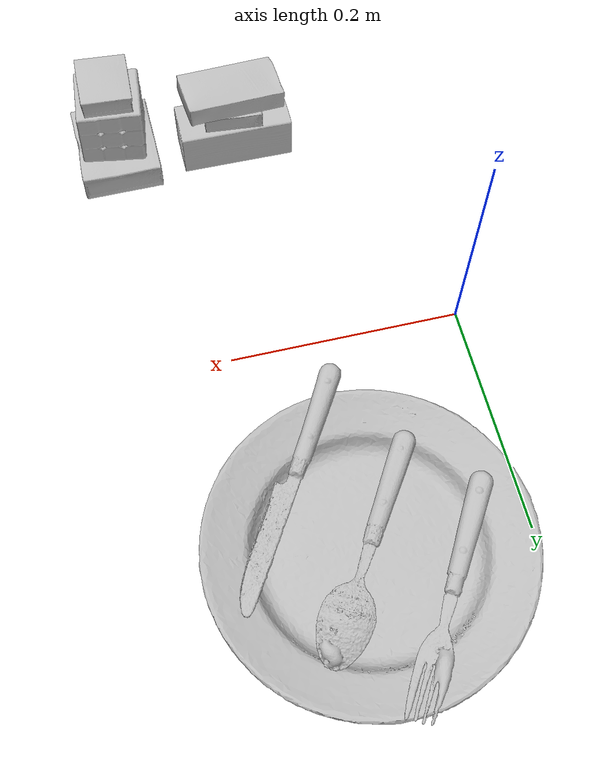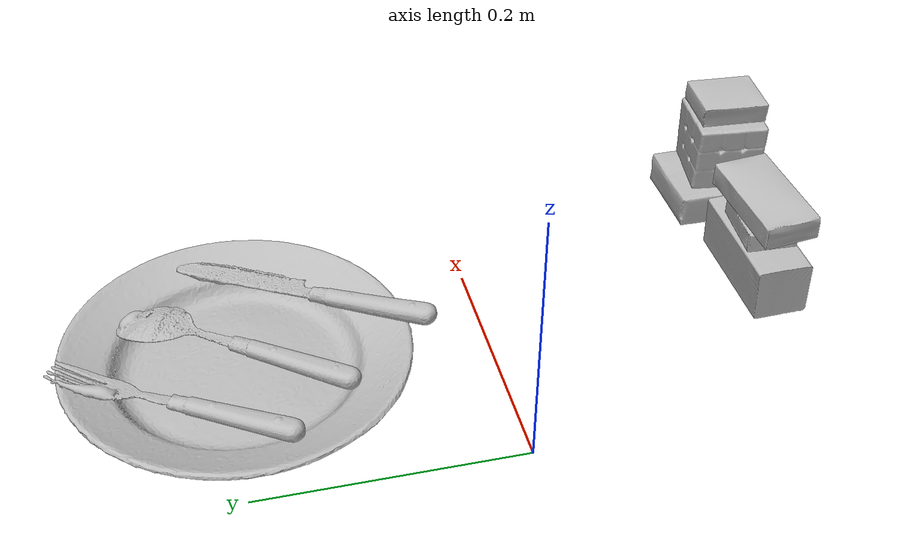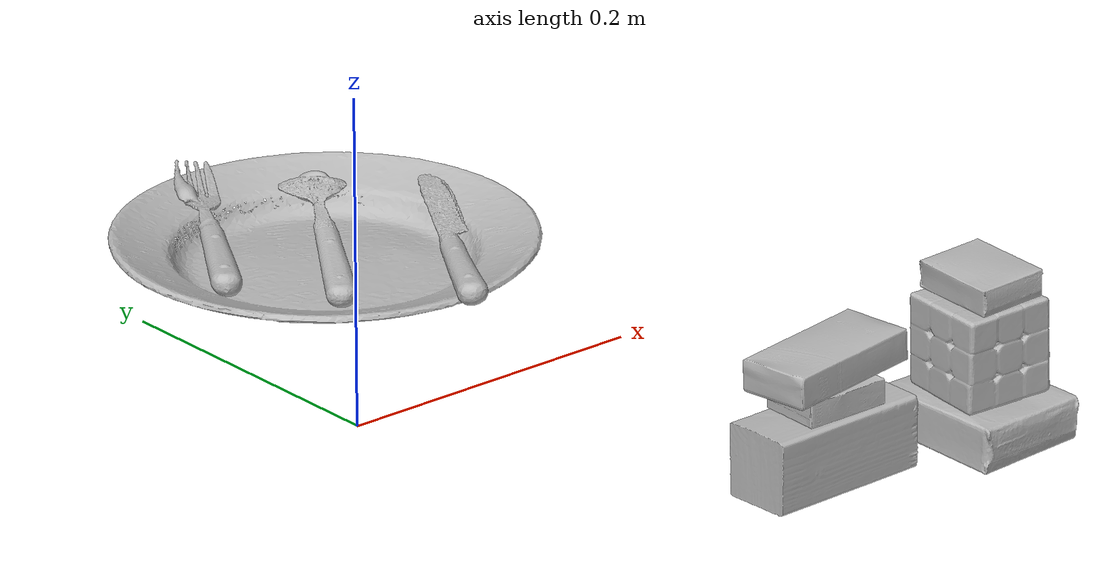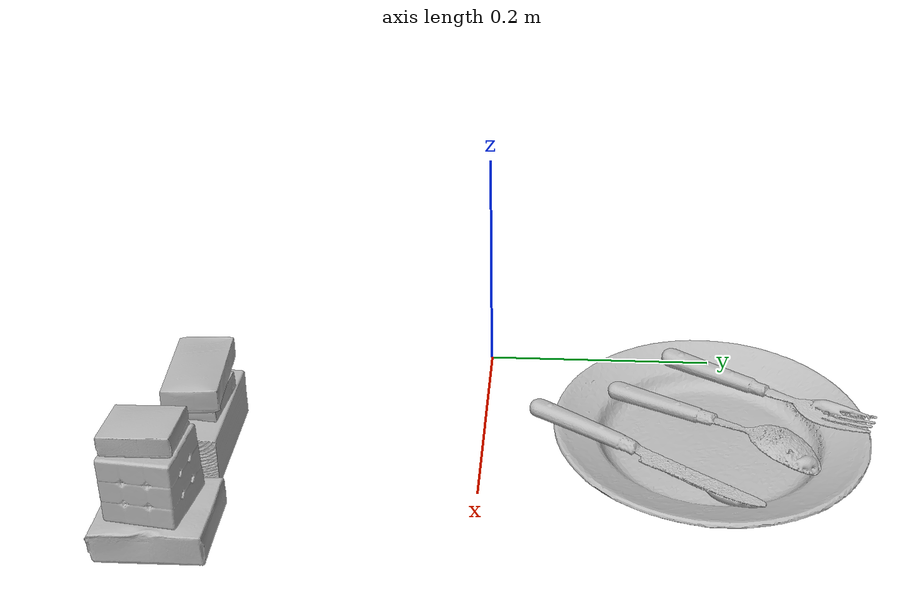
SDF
<?xml version="1.0" ?>
<sdf version="1.4">
  <world name="default">
    <light name="light1" type="point">
      <pose>0 0 1 0 0 0</pose>
      <diffuse>3 3 3 1</diffuse>
      <specular>3 3 3 1</specular>
    </light>
    <light name="light2" type="point">
      <pose>0 0.5 2 0 0 0</pose>
      <diffuse>1 1 1 1</diffuse>
      <specular>1 1 1 1</specular>
    </light>
    <light name="light3" type="point">
      <pose>0 0.5 2 0 0 0</pose>
      <diffuse>3 3 3 1</diffuse>
      <specular>3 3 3 1</specular>
    </light>
    <scene>
      <ambient>0.7 0.7 0.7</ambient>
    </scene>
    <model name="box11">
      <link name="link_box11">
        <collision name="default">
          <geometry>
            <mesh>
              <uri>model://gelatin_box/collision_meshes/collision.obj</uri>
              <scale>1.0 1.0 1.0</scale>
            </mesh>
          </geometry>
          <surface>
            <friction>
              <ode>
                <mu>0.5</mu>
                <mu2>0.5</mu2>
              </ode>
            </friction>
          </surface>
        </collision>
        <visual name="default">
          <geometry>
            <mesh>
              <uri>model://gelatin_box/visual_meshes/visual.dae</uri>
              <scale>1.0 1.0 1.0</scale>
            </mesh>
          </geometry>
        </visual>
        <inertial>
          <mass>0.25029057264328003</mass>
          <pose>0.0004319618456065655 0.00011156871914863586 -0.0003640321083366871 -0.0010503719874808634 -0.004755820553863559 0.01644055760983946</pose>
          <inertia>
            <ixx>0.00017668474</ixx>
            <iyy>0.000126205</iyy>
            <izz>0.00026895347</izz>
            <ixy>0</ixy>
            <ixz>0</ixz>
            <iyz>0</iyz>
          </inertia>
        </inertial>
      </link>
      <pose>0.25998008251190186 -0.23993290960788727 0.015168305486440659 0.005593690212416526 -0.007301746060565749 -0.00019321790138053245</pose>
    </model>
    <model name="box12">
      <link name="link_box12">
        <collision name="default">
          <geometry>
            <mesh>
              <uri>model://rubiks_cube/collision_meshes/collision.obj</uri>
              <scale>1.0 1.0 1.0</scale>
            </mesh>
          </geometry>
          <surface>
            <friction>
              <ode>
                <mu>0.5</mu>
                <mu2>0.5</mu2>
              </ode>
            </friction>
          </surface>
        </collision>
        <visual name="default">
          <geometry>
            <mesh>
              <uri>model://rubiks_cube/visual_meshes/visual.dae</uri>
              <scale>1.0 1.0 1.0</scale>
            </mesh>
          </geometry>
        </visual>
        <inertial>
          <mass>0.21638615429401398</mass>
          <pose>2.6721043468569405e-05 5.2569666877388954e-05 -7.264316536748083e-06 -0.054671974778446215 -0.0981397652693683 -0.03445575269454635</pose>
          <inertia>
            <ixx>0.00011956789</ixx>
            <iyy>0.00011901029</iyy>
            <izz>0.00012055871</izz>
            <ixy>0</ixy>
            <ixz>0</ixz>
            <iyz>0</iyz>
          </inertia>
        </inertial>
      </link>
      <pose>0.2588077485561371 -0.23992247879505157 0.05841498821973801 -0.007110449831550501 -0.03379948101112483 -0.09120349188357176</pose>
    </model>
    <model name="box13">
      <link name="link_box13">
        <collision name="default">
          <geometry>
            <mesh>
              <uri>model://pudding_box/collision_meshes/collision.obj</uri>
              <scale>0.5 0.5 0.5</scale>
            </mesh>
          </geometry>
          <surface>
            <friction>
              <ode>
                <mu>0.5</mu>
                <mu2>0.5</mu2>
              </ode>
            </friction>
          </surface>
        </collision>
        <visual name="default">
          <geometry>
            <mesh>
              <uri>model://pudding_box/visual_meshes/visual.dae</uri>
              <scale>0.5 0.5 0.5</scale>
            </mesh>
          </geometry>
        </visual>
        <inertial>
          <mass>0.024692855775356293</mass>
          <pose>0.00024474109522998333 0.00040339428232982755 -0.0002594413817860186 0.005213102294063647 -0.006603794537377036 0.020079827031592012</pose>
          <inertia>
            <ixx>6.9785e-06</ixx>
            <iyy>4.695185e-06</iyy>
            <izz>1.030558e-05</izz>
            <ixy>0</ixy>
            <ixz>0</ixz>
            <iyz>0</iyz>
          </inertia>
        </inertial>
      </link>
      <pose>0.25858673453330994 -0.2397509515285492 0.09727060049772263 0.01612426326979103 -0.02910659807260202 -0.028321477887295034</pose>
    </model>
    <model name="box21">
      <link name="link_box21">
        <collision name="default">
          <geometry>
            <mesh>
              <uri>model://wood_block/collision_meshes/collision.obj</uri>
              <scale>0.5 0.5 0.5</scale>
            </mesh>
          </geometry>
          <surface>
            <friction>
              <ode>
                <mu>0.5</mu>
                <mu2>0.5</mu2>
              </ode>
            </friction>
          </surface>
        </collision>
        <visual name="default">
          <geometry>
            <mesh>
              <uri>model://wood_block/visual_meshes/visual.dae</uri>
              <scale>0.5 0.5 0.5</scale>
            </mesh>
          </geometry>
        </visual>
        <inertial>
          <mass>0.2621258497238159</mass>
          <pose>-2.9066577553749084e-06 -0.000285404734313488 0.00013204291462898254 -0.05220799390803197 -0.005192696360797016 -0.006861376940793837</pose>
          <inertia>
            <ixx>8.7691005e-05</ixx>
            <iyy>0.00027701593</iyy>
            <izz>0.00027597975</izz>
            <ixy>0</ixy>
            <ixz>0</ixz>
            <iyz>0</iyz>
          </inertia>
        </inertial>
      </link>
      <pose>0.14982928335666656 -0.22917792201042175 0.022527877241373062 -0.01637109699024272 -0.0006035125834942696 0.005394296605035799</pose>
    </model>
    <model name="box22">
      <link name="link_box22">
        <collision name="default">
          <geometry>
            <mesh>
              <uri>model://cracker_box/collision_meshes/collision.obj</uri>
              <scale>0.25 0.25 0.25</scale>
            </mesh>
          </geometry>
          <surface>
            <friction>
              <ode>
                <mu>0.5</mu>
                <mu2>0.5</mu2>
              </ode>
            </friction>
          </surface>
        </collision>
        <visual name="default">
          <geometry>
            <mesh>
              <uri>model://cracker_box/visual_meshes/visual.dae</uri>
              <scale>0.25 0.25 0.25</scale>
            </mesh>
          </geometry>
        </visual>
        <inertial>
          <mass>0.04544714838266373</mass>
          <pose>0.0002366049593547359 6.358561950037256e-05 -0.0004257383698131889 -0.0003162075981767565 -0.011106493326025165 0.0025467940711340945</pose>
          <inertia>
            <ixx>7.224829e-06</ixx>
            <iyy>1.1929612e-05</iyy>
            <izz>1.702465e-05</izz>
            <ixy>0</ixy>
            <ixz>0</ixz>
            <iyz>0</iyz>
          </inertia>
        </inertial>
      </link>
      <pose>0.15004809200763702 -0.22963808476924896 0.05446309968829155 -0.028430055729279976 -0.015018380445899579 -0.06534761555082996</pose>
    </model>
    <model name="box23">
      <link name="link_box23">
        <collision name="default">
          <geometry>
            <mesh>
              <uri>model://sugar_box/collision_meshes/collision.obj</uri>
              <scale>0.5 0.5 0.5</scale>
            </mesh>
          </geometry>
          <surface>
            <friction>
              <ode>
                <mu>0.5</mu>
                <mu2>0.5</mu2>
              </ode>
            </friction>
          </surface>
        </collision>
        <visual name="default">
          <geometry>
            <mesh>
              <uri>model://sugar_box/visual_meshes/visual.dae</uri>
              <scale>0.5 0.5 0.5</scale>
            </mesh>
          </geometry>
        </visual>
        <inertial>
          <mass>0.08974423259496689</mass>
          <pose>0.0005171863595023751 1.924554817378521e-05 -0.00018182402709499002 -0.00040462647498757867 0.0010506636387592515 0.0026153785559760484</pose>
          <inertia>
            <ixx>1.869366e-05</ixx>
            <iyy>6.0421757e-05</iyy>
            <izz>7.233205e-05</izz>
            <ixy>0</ixy>
            <ixz>0</ixz>
            <iyz>0</iyz>
          </inertia>
        </inertial>
      </link>
      <pose>0.1494000107049942 -0.22924430668354034 0.07464625686407089 -0.026910974667135913 -0.048554889552088754 0.08488105439613697</pose>
    </model>
    <model name="plate1">
      <link name="link_plate1">
        <collision name="default">
          <geometry>
            <mesh>
              <uri>model://plate/collision_meshes/collision.obj</uri>
              <scale>1.0 1.0 1.0</scale>
            </mesh>
          </geometry>
          <surface>
            <friction>
              <ode>
                <mu>0.5</mu>
                <mu2>0.5</mu2>
              </ode>
            </friction>
          </surface>
        </collision>
        <visual name="default">
          <geometry>
            <mesh>
              <uri>model://plate/visual_meshes/visual.dae</uri>
              <scale>1.0 1.0 1.0</scale>
            </mesh>
          </geometry>
        </visual>
        <inertial>
          <mass>0.25075921416282654</mass>
          <pose>-0.0006044597248546779 0.00027825814322568476 -0.0010562010575085878 0.0022187872861569474 -0.003225478732834207 0.4526086398584511</pose>
          <inertia>
            <ixx>0.0011730565</ixx>
            <iyy>0.0011618367</iyy>
            <izz>0.0022943232</izz>
            <ixy>0</ixy>
            <ixz>0</ixz>
            <iyz>0</iyz>
          </inertia>
        </inertial>
      </link>
      <pose>0.12999998033046722 0.1900000274181366 0.013733002357184887 5.861510755493233e-08 4.039611185467677e-08 1.2551143779389842e-10</pose>
    </model>
    <model name="silverware1">
      <link name="link_silverware1">
        <collision name="default">
          <geometry>
            <mesh>
              <uri>model://spoon/collision_meshes/collision.obj</uri>
              <scale>1.0 1.0 1.0</scale>
            </mesh>
          </geometry>
          <surface>
            <friction>
              <ode>
                <mu>0.5</mu>
                <mu2>0.5</mu2>
              </ode>
            </friction>
          </surface>
        </collision>
        <visual name="default">
          <geometry>
            <mesh>
              <uri>model://spoon/visual_meshes/visual.dae</uri>
              <scale>1.0 1.0 1.0</scale>
            </mesh>
          </geometry>
        </visual>
        <inertial>
          <mass>0.036317918449640274</mass>
          <pose>-0.005526306107640266 -0.0016034167492762208 -0.0007271648501046002 0.03521625205726148 -0.039065835985121374 0.0061506181118877856</pose>
          <inertia>
            <ixx>2.0200612e-06</ixx>
            <iyy>0.00013818844</iyy>
            <izz>0.00013918467</izz>
            <ixy>0</ixy>
            <ixz>0</ixz>
            <iyz>0</iyz>
          </inertia>
        </inertial>
      </link>
      <pose>0.13164080679416656 0.18951722979545593 0.026727473363280296 3.1101124081600577 -0.07074652448465711 1.0084770784428023</pose>
    </model>
    <model name="silverware2">
      <link name="link_silverware2">
        <collision name="default">
          <geometry>
            <mesh>
              <uri>model://knife/collision_meshes/collision.obj</uri>
              <scale>1.0 1.0 1.0</scale>
            </mesh>
          </geometry>
          <surface>
            <friction>
              <ode>
                <mu>0.5</mu>
                <mu2>0.5</mu2>
              </ode>
            </friction>
          </surface>
        </collision>
        <visual name="default">
          <geometry>
            <mesh>
              <uri>model://knife/visual_meshes/visual.dae</uri>
              <scale>1.0 1.0 1.0</scale>
            </mesh>
          </geometry>
        </visual>
        <inertial>
          <mass>0.03166225552558899</mass>
          <pose>-0.02378525584936142 0.0015275123296305537 5.0620161346159875e-05 0.07305183970819301 0.01724842094470774 -0.007409827313526415</pose>
          <inertia>
            <ixx>8.9870355e-07</ixx>
            <iyy>0.00012164128</iyy>
            <izz>0.00012193073</izz>
            <ixy>0</ixy>
            <ixz>0</ixz>
            <iyz>0</iyz>
          </inertia>
        </inertial>
      </link>
      <pose>0.17966239154338837 0.1304633468389511 0.02903464250266552 -0.11724977166433277 0.03612081465687389 1.00674308185995</pose>
    </model>
    <model name="silverware3">
      <link name="link_silverware3">
        <collision name="default">
          <geometry>
            <mesh>
              <uri>model://fork/collision_meshes/collision.obj</uri>
              <scale>1.0 1.0 1.0</scale>
            </mesh>
          </geometry>
          <surface>
            <friction>
              <ode>
                <mu>0.5</mu>
                <mu2>0.5</mu2>
              </ode>
            </friction>
          </surface>
        </collision>
        <visual name="default">
          <geometry>
            <mesh>
              <uri>model://fork/visual_meshes/visual.dae</uri>
              <scale>1.0 1.0 1.0</scale>
            </mesh>
          </geometry>
        </visual>
        <inertial>
          <mass>0.03018845245242119</mass>
          <pose>-0.029570050537586212 0.00046588227269239724 0.00032188609475269914 -0.013551782414775644 -0.010977841906558662 0.014453907874592884</pose>
          <inertia>
            <ixx>1.0582761e-06</ixx>
            <iyy>7.881335e-05</iyy>
            <izz>7.928668e-05</izz>
            <ixy>0</ixy>
            <ixz>0</ixz>
            <iyz>0</iyz>
          </inertia>
        </inertial>
      </link>
      <pose>0.08121202886104584 0.23946326971054077 0.02583044208586216 0.2053023528934295 0.019509942512990954 1.020932323722304</pose>
    </model>
  </world>
</sdf>
